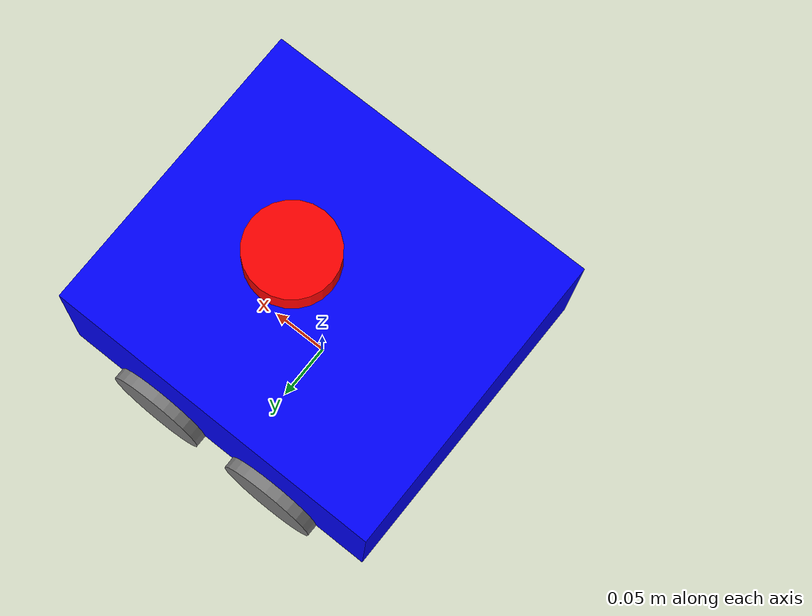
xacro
<?xml version="1.0"?>
<robot name = "my_car" xmlns:xacro="http://www.ros.org/wiki/xacro">

    <xacro:include filename="common_properties.urdf.xacro" />
    <xacro:include filename="my_car_base.urdf.xacro" />
    <xacro:include filename="my_car_base_gazebo.urdf.xacro" />
    <xacro:include filename="my_car_lidar.urdf.xacro" />

</robot>

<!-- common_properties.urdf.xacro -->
<robot xmlns:xacro="http://www.ros.org/wiki/xacro">

    <material name = "blue">
        <color rgba = "0 0 1 1"></color>
    </material>

    <material name = "grey">
        <color rgba = "0.5 0.5 0.5 1"></color>
    </material>

    <material name = "red">
        <color rgba = "1 0 0 1"></color>
    </material>

    <material name = "green">
        <color rgba = "0 1 0 1"></color>
    </material>

    <xacro:macro name="box_inertia" params="m l w h xyz rpy">
        <inertial>
            <origin  xyz="${xyz}" rpy="${rpy}"/>
            <mass value="${m}"/>
            <inertia ixx="${(m/12) * (h*h+l*l)}" ixy="0" ixz="0"
                     iyy="${(m/12) * (w*w + l*l)}" iyz="0"
                     izz="${(m/12) * (w*w + h*h)}"
            />
        </inertial>
    </xacro:macro>

    <xacro:macro name="cylinder_inertia" params="m r h xyz rpy">
        <inertial>
            <origin xyx="${xyz}" rpy="${rpy}"/>
            <mass value="${m}"/>
            <inertia ixx="${(m/12) * (3*r*r + h*h)}" ixy="0" ixz="0"
                     iyy="${(m/12) * (3*r*r + h*h)}" iyz="0"
                     izz="${(m/2) * (r*r)}"
            />

        </inertial>
    </xacro:macro>

</robot>

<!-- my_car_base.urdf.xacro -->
<robot xmlns:xacro="http://www.ros.org/wiki/xacro">

    <xacro:property name="base_length" value="0.29" />
    <xacro:property name="base_width" value="0.26" />
    <xacro:property name="base_height" value="0.12825" />
    <xacro:property name="wheel_radius" value="0.0425" />
    <xacro:property name="wheel_length" value="0.02" />

    <link name = "base_footprint" />

    <link name = "base_link">
        <visual>
            <geometry>
                <box size = "${base_length} ${base_width} ${base_height}"></box>
            </geometry>
            <origin xyz = "0 0 ${base_height / 2.0}" rpy = "0 0 0"></origin>
            <material name = "blue"/>
        </visual>
        <collision>
            <geometry>
                <box size = "${base_length} ${base_width} ${base_height}"></box>
            </geometry>
            <origin xyz = "0 0 ${base_height / 2.0}" rpy = "0 0 0"></origin>
        </collision>
        <xacro:box_inertia m="5.0" l="${2.5*base_length}" w="${2.5*base_width}" h="${2.5*base_height}"
                           xyz="0 0 ${2.5*base_height / 2.0}" rpy="0 0 0" />
    </link>

    <xacro:macro name="wheel_link" params="prefix">
        <link name = "${prefix}_wheel_link">
            <visual>
                <geometry>
                    <cylinder radius = "${wheel_radius}" length = "${wheel_length}" />
                </geometry>
                <origin xyz = "0 0 0" rpy = "${pi / 2.0} 0 0" />
                <material name = "grey" />
            </visual>
            <collision>
                <geometry>
                    <cylinder radius = "${wheel_radius}" length = "${wheel_length}" />
                </geometry>
                <origin xyz = "0 0 0" rpy = "${pi / 2.0} 0 0" />
            </collision>
            <xacro:cylinder_inertia m ="1.0" r="${2.5*wheel_radius}" h="${2.5*wheel_length}" xyz=" 0 0 0"
                                    rpy="${pi / 2.0} 0 0" />
        </link>
    </xacro:macro>

    <xacro:wheel_link prefix="right"/>
    <xacro:wheel_link prefix="left"/>
    <xacro:wheel_link prefix="right_front"/>
    <xacro:wheel_link prefix="left_front"/>

    <joint name = "base_footprint_base_joint" type = "fixed">
        <parent link = "base_footprint" />
        <child link = "base_link" />
        <origin xyz = "0 0 0.1" rpy = "0 0 0" />
    </joint>

    <joint name = "base_right_wheel_joint" type = "continuous">
        <parent link = "base_link" />
        <child link = "right_wheel_link" />
        <origin xyz = "${-base_length / 2.0 + 0.0885} ${-(base_width / 2.0)} 0" rpy = "0 0 0" />
        <axis xyz = "0 1 0" />
    </joint>

    <joint name = "base_left_wheel_joint" type = "continuous">
        <parent link = "base_link" />
        <child link = "left_wheel_link" />
        <origin xyz = "${-base_length / 2.0 + 0.0885} ${(base_width / 2.0)} 0" rpy = "0 0 0" />
        <axis xyz = "0 1 0" />
    </joint>

    <joint name = "base_right_front_wheel_joint" type = "continuous">
        <parent link = "base_link" />
        <child link = "right_front_wheel_link" />
        <origin xyz = "${base_length / 2.0 - 0.0885} ${-(base_width / 2.0)} 0" rpy = "0 0 0" />
        <axis xyz = "0 1 0" />
    </joint>

    <joint name = "base_left_front_wheel_joint" type = "continuous">
        <parent link = "base_link" />
        <child link = "left_front_wheel_link" />
        <origin xyz = "${base_length / 2.0 - 0.0885} ${(base_width / 2.0)} 0" rpy = "0 0 0" />
        <axis xyz = "0 1 0" />
    </joint>

</robot>

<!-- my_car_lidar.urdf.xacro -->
<robot xmlns:xacro="http://www.ros.org/wiki/xacro">

    <xacro:property name="lidar_radius" value="0.038" />
    <xacro:property name="lidar_length" value="0.0268" />

    <link name="lidar_link">
        <visual>
            <geometry>
                <cylinder radius = "${lidar_radius}" length = "${lidar_length}" />
            </geometry>
            <material name="red" />
        </visual>
        <collision>
            <geometry>
                <cylinder radius = "${lidar_radius}" length = "${lidar_length}" />
            </geometry>
        </collision>
        <xacro:cylinder_inertia m ="0.1" r="${lidar_radius}" h="${lidar_length}" xyz=" 0 0 0"
                                    rpy="0 0 0" />
    </link>

    <joint name="base_lidar_joint" type="fixed">
        <parent link="base_link"/>
        <child link="lidar_link"/>
        <origin xyz="${base_length/2 - 0.11667} 0 ${base_height + 0.5 * lidar_length}" rpy="0 0 0"/>
    </joint>

    <gazebo reference="lidar_link">
        <material>Gazebo/Red</material>

        <sensor name="lidar" type="ray">
            <pose> 0 0 0 0 0 0 </pose>
            <visualize>true</visualize>
            <update_rate>30</update_rate>
            <ray>
                <scan>
                    <horizontal>
                        <samples>360</samples>
                        <min_angle>-3.14</min_angle>
                        <max_angle>3.14</max_angle>
                    </horizontal>
                </scan>
                <range>
                    <min>0.3</min>
                    <max>12</max>
                </range>
            </ray>
            <plugin name="lidar_controller" filename="libgazebo_ros_ray_sensor.so">
                <ros>
                    <argument>~/out:=scan</argument>
                </ros>
                <output_type>sensor_msgs/LaserScan</output_type>
                <frame_name>lidar_link</frame_name>
            </plugin>
        </sensor>
    </gazebo>

</robot>
